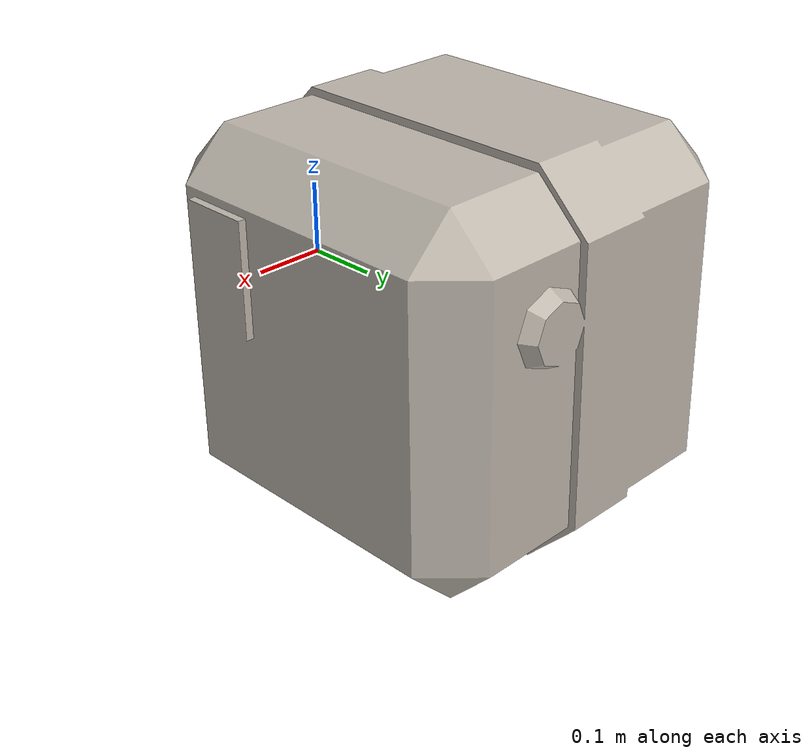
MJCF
<mujoco model="cargo_B_packed">
  <default>
    <default class="visual">
      <geom group="2" type="mesh" contype="0" conaffinity="0" />
    </default>
    <default class="collision">
      <geom group="3" type="mesh" />
    </default>
  </default>
  <asset>
    <texture type="2d" name="cargo_B_packed_spacebits_texture" file="spacebits_texture.png" />
    <material name="cargo_B_packed_spacebits_texture" texture="cargo_B_packed_spacebits_texture" specular="0.50196078" shininess="0.15999998099999999" />
    <mesh file="cargo_B_packed.obj" name="cargo_B_packed_cargo_B_packed" />
  </asset>
  <worldbody>
    <body name="cargo_B_packed">
      <geom material="cargo_B_packed_spacebits_texture" mesh="cargo_B_packed_cargo_B_packed" class="visual" />
      <geom mesh="cargo_B_packed_cargo_B_packed" class="collision" />
    </body>
  </worldbody>
</mujoco>
